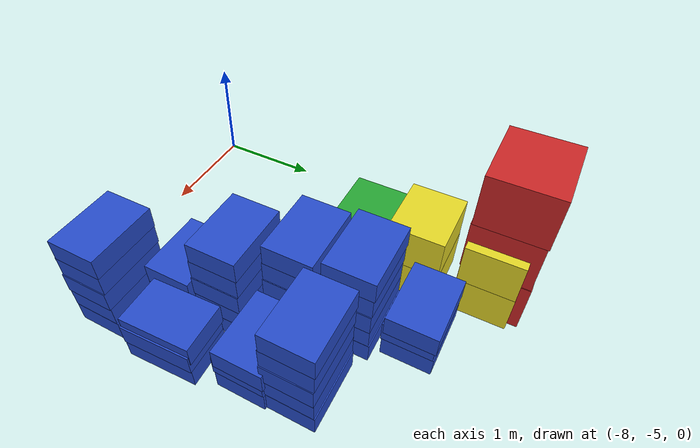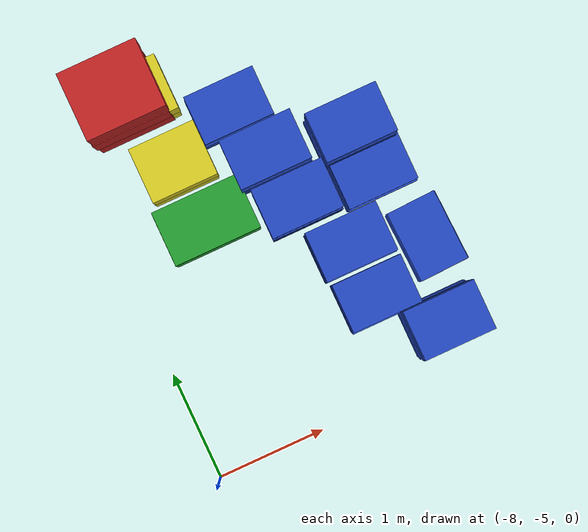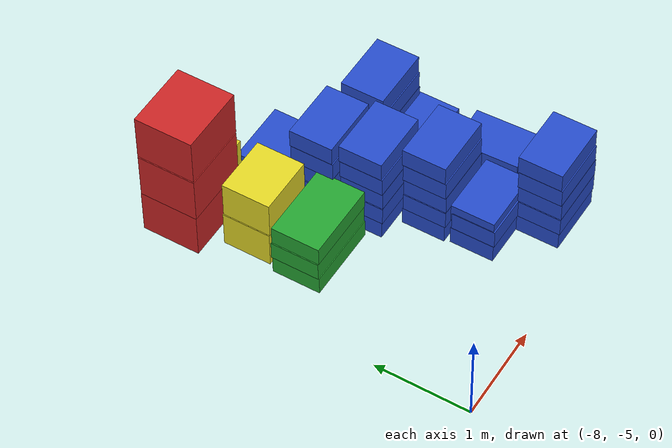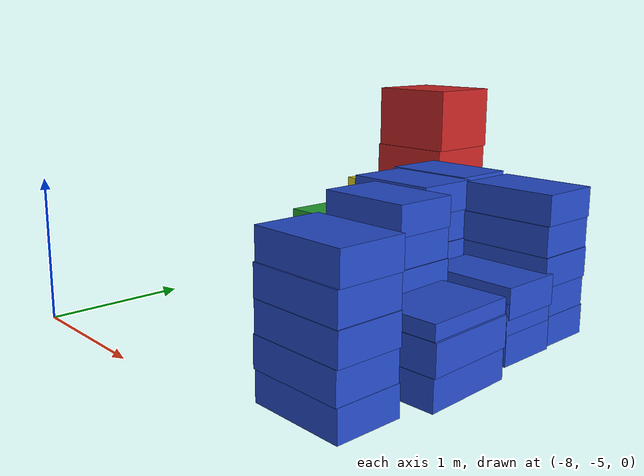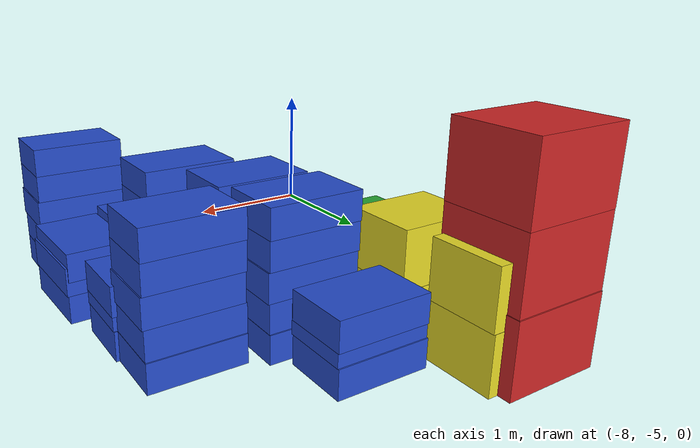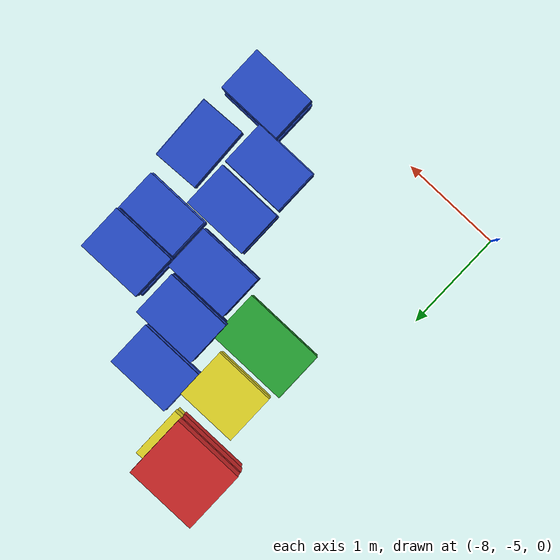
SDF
<sdf version="1.6">
 <world name="default">
  <include><uri>model://sun</uri></include>
  <model name="baggage_D_x3_18">
   <model name="baggage_D_0">
    <static>1</static>
    <link name="link">
     <collision name="collision"><geometry><box><size>0.8 0.5 0.2</size></box></geometry></collision>
     <visual name="visual">
      <geometry><box><size>0.8 0.5 0.2</size></box></geometry>
      <material>
       <script><uri>file://media/materials/scripts/gazebo.material</uri><name>Gazebo/Green</name></script>
      </material>
     </visual>
    </link>
    <pose>0 0 0.1 0 -0 0</pose>
   </model>
   <model name="baggage_D_1">
    <static>1</static>
    <link name="link">
     <collision name="collision"><geometry><box><size>0.8 0.5 0.2</size></box></geometry></collision>
     <visual name="visual">
      <geometry><box><size>0.8 0.5 0.2</size></box></geometry>
      <material>
       <script><uri>file://media/materials/scripts/gazebo.material</uri><name>Gazebo/Green</name></script>
      </material>
     </visual>
    </link>
    <pose>-0.0056 0.0083 0.3 0 -0 0</pose>
   </model>
   <model name="baggage_D_2">
    <static>1</static>
    <link name="link">
     <collision name="collision"><geometry><box><size>0.8 0.5 0.2</size></box></geometry></collision>
     <visual name="visual">
      <geometry><box><size>0.8 0.5 0.2</size></box></geometry>
      <material>
       <script><uri>file://media/materials/scripts/gazebo.material</uri><name>Gazebo/Green</name></script>
      </material>
     </visual>
    </link>
    <pose>0.0053 0.0057 0.5 0 -0 0</pose>
   </model>
   <pose>-7.15437 -2.91181 0 0 -0 0</pose>
  </model>
  <model name="baggage_C_x2_26">
   <model name="baggage_C_0">
    <static>1</static>
    <link name="link">
     <collision name="collision"><geometry><box><size>0.6 0.5 0.4</size></box></geometry></collision>
     <visual name="visual">
      <geometry><box><size>0.6 0.5 0.4</size></box></geometry>
      <material>
       <script><uri>file://media/materials/scripts/gazebo.material</uri><name>Gazebo/Yellow</name></script>
      </material>
     </visual>
    </link>
    <pose>0 0 0.2 0 -0 0</pose>
   </model>
   <model name="baggage_C_1">
    <static>1</static>
    <link name="link">
     <collision name="collision"><geometry><box><size>0.6 0.5 0.4</size></box></geometry></collision>
     <visual name="visual">
      <geometry><box><size>0.6 0.5 0.4</size></box></geometry>
      <material>
       <script><uri>file://media/materials/scripts/gazebo.material</uri><name>Gazebo/Yellow</name></script>
      </material>
     </visual>
    </link>
    <pose>0.0093 -0.002 0.6 0 -0 0</pose>
   </model>
   <pose>-7.19994 -2.34772 0 0 -0 0</pose>
  </model>
  <model name="baggage_B_x3_17">
   <model name="baggage_B_0">
    <static>1</static>
    <link name="link">
     <collision name="collision"><geometry><box><size>0.65 0.45 0.2</size></box></geometry></collision>
     <visual name="visual">
      <geometry><box><size>0.65 0.45 0.2</size></box></geometry>
      <material>
       <script><uri>file://media/materials/scripts/gazebo.material</uri><name>Gazebo/Blue</name></script>
      </material>
     </visual>
    </link>
    <pose>0 0 0.1 0 -0 0</pose>
   </model>
   <model name="baggage_B_1">
    <static>1</static>
    <link name="link">
     <collision name="collision"><geometry><box><size>0.65 0.45 0.2</size></box></geometry></collision>
     <visual name="visual">
      <geometry><box><size>0.65 0.45 0.2</size></box></geometry>
      <material>
       <script><uri>file://media/materials/scripts/gazebo.material</uri><name>Gazebo/Blue</name></script>
      </material>
     </visual>
    </link>
    <pose>0.0028 -0.0086 0.3 0 -0 0</pose>
   </model>
   <model name="baggage_B_2">
    <static>1</static>
    <link name="link">
     <collision name="collision"><geometry><box><size>0.65 0.45 0.2</size></box></geometry></collision>
     <visual name="visual">
      <geometry><box><size>0.65 0.45 0.2</size></box></geometry>
      <material>
       <script><uri>file://media/materials/scripts/gazebo.material</uri><name>Gazebo/Blue</name></script>
      </material>
     </visual>
    </link>
    <pose>0.0092 0.006 0.4 0 -0 0</pose>
   </model>
   <pose>-6.57072 -2.09615 0 0 -0 0</pose>
  </model>
  <model name="baggage_B_x5_17">
   <model name="baggage_B_0">
    <static>1</static>
    <link name="link">
     <collision name="collision"><geometry><box><size>0.65 0.45 0.2</size></box></geometry></collision>
     <visual name="visual">
      <geometry><box><size>0.65 0.45 0.2</size></box></geometry>
      <material>
       <script><uri>file://media/materials/scripts/gazebo.material</uri><name>Gazebo/Blue</name></script>
      </material>
     </visual>
    </link>
    <pose>0 0 0.1 0 -0 0</pose>
   </model>
   <model name="baggage_B_1">
    <static>1</static>
    <link name="link">
     <collision name="collision"><geometry><box><size>0.65 0.45 0.2</size></box></geometry></collision>
     <visual name="visual">
      <geometry><box><size>0.65 0.45 0.2</size></box></geometry>
      <material>
       <script><uri>file://media/materials/scripts/gazebo.material</uri><name>Gazebo/Blue</name></script>
      </material>
     </visual>
    </link>
    <pose>-0.0014 -0.0091 0.3 0 -0 0</pose>
   </model>
   <model name="baggage_B_2">
    <static>1</static>
    <link name="link">
     <collision name="collision"><geometry><box><size>0.65 0.45 0.2</size></box></geometry></collision>
     <visual name="visual">
      <geometry><box><size>0.65 0.45 0.2</size></box></geometry>
      <material>
       <script><uri>file://media/materials/scripts/gazebo.material</uri><name>Gazebo/Blue</name></script>
      </material>
     </visual>
    </link>
    <pose>0.0076 -0.0066 0.5 0 -0 0</pose>
   </model>
   <model name="baggage_B_3">
    <static>1</static>
    <link name="link">
     <collision name="collision"><geometry><box><size>0.65 0.45 0.2</size></box></geometry></collision>
     <visual name="visual">
      <geometry><box><size>0.65 0.45 0.2</size></box></geometry>
      <material>
       <script><uri>file://media/materials/scripts/gazebo.material</uri><name>Gazebo/Blue</name></script>
      </material>
     </visual>
    </link>
    <pose>0 -0.0032 0.7 0 -0 0</pose>
   </model>
   <model name="baggage_B_4">
    <static>1</static>
    <link name="link">
     <collision name="collision"><geometry><box><size>0.65 0.45 0.2</size></box></geometry></collision>
     <visual name="visual">
      <geometry><box><size>0.65 0.45 0.2</size></box></geometry>
      <material>
       <script><uri>file://media/materials/scripts/gazebo.material</uri><name>Gazebo/Blue</name></script>
      </material>
     </visual>
    </link>
    <pose>0.0023 0.0073 0.9 0 -0 0</pose>
   </model>
   <pose>-6.44622 -2.60086 0 0 -0 0</pose>
  </model>
  <model name="baggage_B_x5_18">
   <model name="baggage_B_0">
    <static>1</static>
    <link name="link">
     <collision name="collision"><geometry><box><size>0.65 0.45 0.2</size></box></geometry></collision>
     <visual name="visual">
      <geometry><box><size>0.65 0.45 0.2</size></box></geometry>
      <material>
       <script><uri>file://media/materials/scripts/gazebo.material</uri><name>Gazebo/Blue</name></script>
      </material>
     </visual>
    </link>
    <pose>0 0 0.1 0 -0 0</pose>
   </model>
   <model name="baggage_B_1">
    <static>1</static>
    <link name="link">
     <collision name="collision"><geometry><box><size>0.65 0.45 0.2</size></box></geometry></collision>
     <visual name="visual">
      <geometry><box><size>0.65 0.45 0.2</size></box></geometry>
      <material>
       <script><uri>file://media/materials/scripts/gazebo.material</uri><name>Gazebo/Blue</name></script>
      </material>
     </visual>
    </link>
    <pose>-0.0014 -0.0091 0.3 0 -0 0</pose>
   </model>
   <model name="baggage_B_2">
    <static>1</static>
    <link name="link">
     <collision name="collision"><geometry><box><size>0.65 0.45 0.2</size></box></geometry></collision>
     <visual name="visual">
      <geometry><box><size>0.65 0.45 0.2</size></box></geometry>
      <material>
       <script><uri>file://media/materials/scripts/gazebo.material</uri><name>Gazebo/Blue</name></script>
      </material>
     </visual>
    </link>
    <pose>0.0076 -0.0066 0.5 0 -0 0</pose>
   </model>
   <model name="baggage_B_3">
    <static>1</static>
    <link name="link">
     <collision name="collision"><geometry><box><size>0.65 0.45 0.2</size></box></geometry></collision>
     <visual name="visual">
      <geometry><box><size>0.65 0.45 0.2</size></box></geometry>
      <material>
       <script><uri>file://media/materials/scripts/gazebo.material</uri><name>Gazebo/Blue</name></script>
      </material>
     </visual>
    </link>
    <pose>0 -0.0032 0.7 0 -0 0</pose>
   </model>
   <model name="baggage_B_4">
    <static>1</static>
    <link name="link">
     <collision name="collision"><geometry><box><size>0.65 0.45 0.2</size></box></geometry></collision>
     <visual name="visual">
      <geometry><box><size>0.65 0.45 0.2</size></box></geometry>
      <material>
       <script><uri>file://media/materials/scripts/gazebo.material</uri><name>Gazebo/Blue</name></script>
      </material>
     </visual>
    </link>
    <pose>0.0023 0.0073 0.9 0 -0 0</pose>
   </model>
   <pose>-6.37626 -3.08221 0 0 -0 0</pose>
  </model>
  <model name="baggage_B_x5_19">
   <model name="baggage_B_0">
    <static>1</static>
    <link name="link">
     <collision name="collision"><geometry><box><size>0.65 0.45 0.2</size></box></geometry></collision>
     <visual name="visual">
      <geometry><box><size>0.65 0.45 0.2</size></box></geometry>
      <material>
       <script><uri>file://media/materials/scripts/gazebo.material</uri><name>Gazebo/Blue</name></script>
      </material>
     </visual>
    </link>
    <pose>0 0 0.1 0 -0 0</pose>
   </model>
   <model name="baggage_B_1">
    <static>1</static>
    <link name="link">
     <collision name="collision"><geometry><box><size>0.65 0.45 0.2</size></box></geometry></collision>
     <visual name="visual">
      <geometry><box><size>0.65 0.45 0.2</size></box></geometry>
      <material>
       <script><uri>file://media/materials/scripts/gazebo.material</uri><name>Gazebo/Blue</name></script>
      </material>
     </visual>
    </link>
    <pose>-0.0014 -0.0091 0.3 0 -0 0</pose>
   </model>
   <model name="baggage_B_2">
    <static>1</static>
    <link name="link">
     <collision name="collision"><geometry><box><size>0.65 0.45 0.2</size></box></geometry></collision>
     <visual name="visual">
      <geometry><box><size>0.65 0.45 0.2</size></box></geometry>
      <material>
       <script><uri>file://media/materials/scripts/gazebo.material</uri><name>Gazebo/Blue</name></script>
      </material>
     </visual>
    </link>
    <pose>0.0076 -0.0066 0.5 0 -0 0</pose>
   </model>
   <model name="baggage_B_3">
    <static>1</static>
    <link name="link">
     <collision name="collision"><geometry><box><size>0.65 0.45 0.2</size></box></geometry></collision>
     <visual name="visual">
      <geometry><box><size>0.65 0.45 0.2</size></box></geometry>
      <material>
       <script><uri>file://media/materials/scripts/gazebo.material</uri><name>Gazebo/Blue</name></script>
      </material>
     </visual>
    </link>
    <pose>0 -0.0032 0.7 0 -0 0</pose>
   </model>
   <model name="baggage_B_4">
    <static>1</static>
    <link name="link">
     <collision name="collision"><geometry><box><size>0.65 0.45 0.2</size></box></geometry></collision>
     <visual name="visual">
      <geometry><box><size>0.65 0.45 0.2</size></box></geometry>
      <material>
       <script><uri>file://media/materials/scripts/gazebo.material</uri><name>Gazebo/Blue</name></script>
      </material>
     </visual>
    </link>
    <pose>0.0023 0.0073 0.9 0 -0 0</pose>
   </model>
   <pose>-6.11873 -3.59902 0 0 -0 0</pose>
  </model>
  <model name="baggage_B_x3_18">
   <model name="baggage_B_0">
    <static>1</static>
    <link name="link">
     <collision name="collision"><geometry><box><size>0.65 0.45 0.2</size></box></geometry></collision>
     <visual name="visual">
      <geometry><box><size>0.65 0.45 0.2</size></box></geometry>
      <material>
       <script><uri>file://media/materials/scripts/gazebo.material</uri><name>Gazebo/Blue</name></script>
      </material>
     </visual>
    </link>
    <pose>0 0 0.1 0 -0 0</pose>
   </model>
   <model name="baggage_B_1">
    <static>1</static>
    <link name="link">
     <collision name="collision"><geometry><box><size>0.65 0.45 0.2</size></box></geometry></collision>
     <visual name="visual">
      <geometry><box><size>0.65 0.45 0.2</size></box></geometry>
      <material>
       <script><uri>file://media/materials/scripts/gazebo.material</uri><name>Gazebo/Blue</name></script>
      </material>
     </visual>
    </link>
    <pose>0.0028 -0.0086 0.3 0 -0 0</pose>
   </model>
   <model name="baggage_B_2">
    <static>1</static>
    <link name="link">
     <collision name="collision"><geometry><box><size>0.65 0.45 0.2</size></box></geometry></collision>
     <visual name="visual">
      <geometry><box><size>0.65 0.45 0.2</size></box></geometry>
      <material>
       <script><uri>file://media/materials/scripts/gazebo.material</uri><name>Gazebo/Blue</name></script>
      </material>
     </visual>
    </link>
    <pose>0.0092 0.006 0.4 0 -0 0</pose>
   </model>
   <pose>-6.09215 -4.09717 0 0 -0 0</pose>
  </model>
  <model name="baggage_B_x5_20">
   <model name="baggage_B_0">
    <static>1</static>
    <link name="link">
     <collision name="collision"><geometry><box><size>0.65 0.45 0.2</size></box></geometry></collision>
     <visual name="visual">
      <geometry><box><size>0.65 0.45 0.2</size></box></geometry>
      <material>
       <script><uri>file://media/materials/scripts/gazebo.material</uri><name>Gazebo/Blue</name></script>
      </material>
     </visual>
    </link>
    <pose>0 0 0.1 0 -0 0</pose>
   </model>
   <model name="baggage_B_1">
    <static>1</static>
    <link name="link">
     <collision name="collision"><geometry><box><size>0.65 0.45 0.2</size></box></geometry></collision>
     <visual name="visual">
      <geometry><box><size>0.65 0.45 0.2</size></box></geometry>
      <material>
       <script><uri>file://media/materials/scripts/gazebo.material</uri><name>Gazebo/Blue</name></script>
      </material>
     </visual>
    </link>
    <pose>-0.0014 -0.0091 0.3 0 -0 0</pose>
   </model>
   <model name="baggage_B_2">
    <static>1</static>
    <link name="link">
     <collision name="collision"><geometry><box><size>0.65 0.45 0.2</size></box></geometry></collision>
     <visual name="visual">
      <geometry><box><size>0.65 0.45 0.2</size></box></geometry>
      <material>
       <script><uri>file://media/materials/scripts/gazebo.material</uri><name>Gazebo/Blue</name></script>
      </material>
     </visual>
    </link>
    <pose>0.0076 -0.0066 0.5 0 -0 0</pose>
   </model>
   <model name="baggage_B_3">
    <static>1</static>
    <link name="link">
     <collision name="collision"><geometry><box><size>0.65 0.45 0.2</size></box></geometry></collision>
     <visual name="visual">
      <geometry><box><size>0.65 0.45 0.2</size></box></geometry>
      <material>
       <script><uri>file://media/materials/scripts/gazebo.material</uri><name>Gazebo/Blue</name></script>
      </material>
     </visual>
    </link>
    <pose>0 -0.0032 0.7 0 -0 0</pose>
   </model>
   <model name="baggage_B_4">
    <static>1</static>
    <link name="link">
     <collision name="collision"><geometry><box><size>0.65 0.45 0.2</size></box></geometry></collision>
     <visual name="visual">
      <geometry><box><size>0.65 0.45 0.2</size></box></geometry>
      <material>
       <script><uri>file://media/materials/scripts/gazebo.material</uri><name>Gazebo/Blue</name></script>
      </material>
     </visual>
    </link>
    <pose>0.0023 0.0073 0.9 0 -0 0</pose>
   </model>
   <pose>-5.65095 -4.53699 0 0 -0 0</pose>
  </model>
  <model name="baggage_B_x3_19">
   <model name="baggage_B_0">
    <static>1</static>
    <link name="link">
     <collision name="collision"><geometry><box><size>0.65 0.45 0.2</size></box></geometry></collision>
     <visual name="visual">
      <geometry><box><size>0.65 0.45 0.2</size></box></geometry>
      <material>
       <script><uri>file://media/materials/scripts/gazebo.material</uri><name>Gazebo/Blue</name></script>
      </material>
     </visual>
    </link>
    <pose>0 0 0.1 0 -0 0</pose>
   </model>
   <model name="baggage_B_1">
    <static>1</static>
    <link name="link">
     <collision name="collision"><geometry><box><size>0.65 0.45 0.2</size></box></geometry></collision>
     <visual name="visual">
      <geometry><box><size>0.65 0.45 0.2</size></box></geometry>
      <material>
       <script><uri>file://media/materials/scripts/gazebo.material</uri><name>Gazebo/Blue</name></script>
      </material>
     </visual>
    </link>
    <pose>0.0028 -0.0086 0.3 0 -0 0</pose>
   </model>
   <model name="baggage_B_2">
    <static>1</static>
    <link name="link">
     <collision name="collision"><geometry><box><size>0.65 0.45 0.2</size></box></geometry></collision>
     <visual name="visual">
      <geometry><box><size>0.65 0.45 0.2</size></box></geometry>
      <material>
       <script><uri>file://media/materials/scripts/gazebo.material</uri><name>Gazebo/Blue</name></script>
      </material>
     </visual>
    </link>
    <pose>0.0092 0.006 0.4 0 -0 0</pose>
   </model>
   <pose>-5.476729 -3.833027 0 0 -0 1.609199</pose>
  </model>
  <model name="baggage_B_x3_20">
   <model name="baggage_B_0">
    <static>1</static>
    <link name="link">
     <collision name="collision"><geometry><box><size>0.65 0.45 0.2</size></box></geometry></collision>
     <visual name="visual">
      <geometry><box><size>0.65 0.45 0.2</size></box></geometry>
      <material>
       <script><uri>file://media/materials/scripts/gazebo.material</uri><name>Gazebo/Blue</name></script>
      </material>
     </visual>
    </link>
    <pose>0 0 0.1 0 -0 0</pose>
   </model>
   <model name="baggage_B_1">
    <static>1</static>
    <link name="link">
     <collision name="collision"><geometry><box><size>0.65 0.45 0.2</size></box></geometry></collision>
     <visual name="visual">
      <geometry><box><size>0.65 0.45 0.2</size></box></geometry>
      <material>
       <script><uri>file://media/materials/scripts/gazebo.material</uri><name>Gazebo/Blue</name></script>
      </material>
     </visual>
    </link>
    <pose>0.0028 -0.0086 0.3 0 -0 0</pose>
   </model>
   <model name="baggage_B_2">
    <static>1</static>
    <link name="link">
     <collision name="collision"><geometry><box><size>0.65 0.45 0.2</size></box></geometry></collision>
     <visual name="visual">
      <geometry><box><size>0.65 0.45 0.2</size></box></geometry>
      <material>
       <script><uri>file://media/materials/scripts/gazebo.material</uri><name>Gazebo/Blue</name></script>
      </material>
     </visual>
    </link>
    <pose>0.0092 0.006 0.4 0 -0 0</pose>
   </model>
   <pose>-5.67915 -3.12023 0 0 -0 0</pose>
  </model>
  <model name="baggage_B_x5_21">
   <model name="baggage_B_0">
    <static>1</static>
    <link name="link">
     <collision name="collision"><geometry><box><size>0.65 0.45 0.2</size></box></geometry></collision>
     <visual name="visual">
      <geometry><box><size>0.65 0.45 0.2</size></box></geometry>
      <material>
       <script><uri>file://media/materials/scripts/gazebo.material</uri><name>Gazebo/Blue</name></script>
      </material>
     </visual>
    </link>
    <pose>0 0 0.1 0 -0 0</pose>
   </model>
   <model name="baggage_B_1">
    <static>1</static>
    <link name="link">
     <collision name="collision"><geometry><box><size>0.65 0.45 0.2</size></box></geometry></collision>
     <visual name="visual">
      <geometry><box><size>0.65 0.45 0.2</size></box></geometry>
      <material>
       <script><uri>file://media/materials/scripts/gazebo.material</uri><name>Gazebo/Blue</name></script>
      </material>
     </visual>
    </link>
    <pose>-0.0014 -0.0091 0.3 0 -0 0</pose>
   </model>
   <model name="baggage_B_2">
    <static>1</static>
    <link name="link">
     <collision name="collision"><geometry><box><size>0.65 0.45 0.2</size></box></geometry></collision>
     <visual name="visual">
      <geometry><box><size>0.65 0.45 0.2</size></box></geometry>
      <material>
       <script><uri>file://media/materials/scripts/gazebo.material</uri><name>Gazebo/Blue</name></script>
      </material>
     </visual>
    </link>
    <pose>0.0076 -0.0066 0.5 0 -0 0</pose>
   </model>
   <model name="baggage_B_3">
    <static>1</static>
    <link name="link">
     <collision name="collision"><geometry><box><size>0.65 0.45 0.2</size></box></geometry></collision>
     <visual name="visual">
      <geometry><box><size>0.65 0.45 0.2</size></box></geometry>
      <material>
       <script><uri>file://media/materials/scripts/gazebo.material</uri><name>Gazebo/Blue</name></script>
      </material>
     </visual>
    </link>
    <pose>0 -0.0032 0.7 0 -0 0</pose>
   </model>
   <model name="baggage_B_4">
    <static>1</static>
    <link name="link">
     <collision name="collision"><geometry><box><size>0.65 0.45 0.2</size></box></geometry></collision>
     <visual name="visual">
      <geometry><box><size>0.65 0.45 0.2</size></box></geometry>
      <material>
       <script><uri>file://media/materials/scripts/gazebo.material</uri><name>Gazebo/Blue</name></script>
      </material>
     </visual>
    </link>
    <pose>0.0023 0.0073 0.9 0 -0 0</pose>
   </model>
   <pose>-5.70179 -2.69477 0 0 -0 0</pose>
  </model>
  <model name="baggage_A_x3_18">
   <model name="baggage_A_0">
    <static>1</static>
    <link name="link">
     <collision name="collision"><geometry><box><size>0.7 0.6 0.5</size></box></geometry></collision>
     <visual name="visual">
      <geometry><box><size>0.7 0.6 0.5</size></box></geometry>
      <material>
       <script><uri>file://media/materials/scripts/gazebo.material</uri><name>Gazebo/Red</name></script>
      </material>
     </visual>
    </link>
    <pose>0 0 0.25 0 -0 0</pose>
   </model>
   <model name="baggage_A_1">
    <static>1</static>
    <link name="link">
     <collision name="collision"><geometry><box><size>0.7 0.6 0.5</size></box></geometry></collision>
     <visual name="visual">
      <geometry><box><size>0.7 0.6 0.5</size></box></geometry>
      <material>
       <script><uri>file://media/materials/scripts/gazebo.material</uri><name>Gazebo/Red</name></script>
      </material>
     </visual>
    </link>
    <pose>-0.006 -0.0077 0.75 0 -0 0</pose>
   </model>
   <model name="baggage_A_2">
    <static>1</static>
    <link name="link">
     <collision name="collision"><geometry><box><size>0.7 0.6 0.5</size></box></geometry></collision>
     <visual name="visual">
      <geometry><box><size>0.7 0.6 0.5</size></box></geometry>
      <material>
       <script><uri>file://media/materials/scripts/gazebo.material</uri><name>Gazebo/Red</name></script>
      </material>
     </visual>
    </link>
    <pose>0.0045 0.0005 1.25 0 -0 0</pose>
   </model>
   <pose>-7.3856 -1.66591 0 0 -0 0</pose>
  </model>
  <model name="baggage_C_x2_30">
   <model name="baggage_C_0">
    <static>1</static>
    <link name="link">
     <collision name="collision"><geometry><box><size>0.6 0.5 0.4</size></box></geometry></collision>
     <visual name="visual">
      <geometry><box><size>0.6 0.5 0.4</size></box></geometry>
      <material>
       <script><uri>file://media/materials/scripts/gazebo.material</uri><name>Gazebo/Yellow</name></script>
      </material>
     </visual>
    </link>
    <pose>0 0 0.2 0 -0 0</pose>
   </model>
   <model name="baggage_C_1">
    <static>1</static>
    <link name="link">
     <collision name="collision"><geometry><box><size>0.6 0.5 0.4</size></box></geometry></collision>
     <visual name="visual">
      <geometry><box><size>0.6 0.5 0.4</size></box></geometry>
      <material>
       <script><uri>file://media/materials/scripts/gazebo.material</uri><name>Gazebo/Yellow</name></script>
      </material>
     </visual>
    </link>
    <pose>0.0093 -0.002 0.6 0 -0 0</pose>
   </model>
   <pose>-7.26549 -1.70365 0 0 -0 0</pose>
  </model>
 </world>
</sdf>
